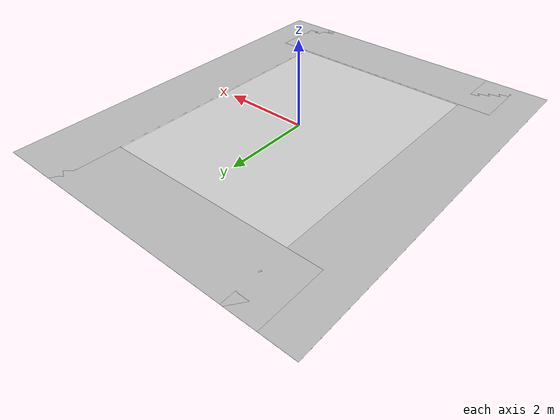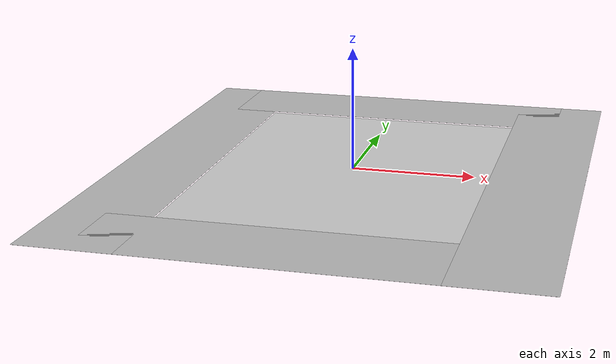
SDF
<?xml version="1.0" ?>
<sdf version="1.4">
  <model name="KRSBI_Regional_field">
    <static>true</static>

    <link name="chassis">
      <pose>0 0 0.01 0 0 0</pose>
      <collision name="collision">
        <geometry>
          <plane>
            <normal>0 0 1</normal>
            <size>4.5 6</size>
          </plane>
        </geometry>
        <surface>
          <friction>
            <ode>
              <mu>100</mu>
              <mu2>50</mu2>
            </ode>
          </friction>
        </surface>
      </collision>

      <visual name="carpet">
        <cast_shadows>false</cast_shadows>
        <geometry>
          <plane>
            <normal>0 0 1</normal>
            <size>4.5 6</size>
          </plane>
        </geometry>
        <material>
          <script>
            <uri>file://materials/scripts/</uri>
            <uri>file://materials/textures/</uri>
            <name>RoboCup/Carpet</name>
          </script>
        </material>
      </visual>

       <visual name="base1">
        <pose>0 3.75 0.01 0 0 0</pose>
        <cast_shadows>false</cast_shadows>
        <geometry>
          <plane>
            <normal>0 0 1</normal>
            <size>6.0 1.5</size>
          </plane>
        </geometry>
        <material>
          <script>
            <uri>file://materials/scripts/</uri>
            <uri>file://materials/textures/</uri>
            <name>RoboCup/FieldBorder</name>
          </script>
        </material>
      </visual>
      <visual name="base2">
        <pose>0 -3.75 0.01 0 0 0</pose>
        <cast_shadows>false</cast_shadows>
        <geometry>
          <plane>
            <normal>0 0 1</normal>
            <size>6.0 1.5</size>
          </plane>
        </geometry>
        <material>
          <script>
            <uri>file://materials/scripts/</uri>
            <uri>file://materials/textures/</uri>
            <name>RoboCup/FieldBorder</name>
          </script>
        </material>
      </visual>
      <visual name="base3">
        <pose>3.0 0 0.01 0 0 0</pose>
        <cast_shadows>false</cast_shadows>
        <geometry>
          <plane>
            <normal>0 0 1</normal>
            <size>1.5 9.0</size>
          </plane>
        </geometry>
        <material>
          <script>
            <uri>file://materials/scripts/</uri>
            <uri>file://materials/textures/</uri>
            <name>RoboCup/FieldBorder</name>
          </script>
        </material>
      </visual>
      <visual name="base4">
        <pose>-3.0 0 0.01 0 0 0</pose>
        <cast_shadows>false</cast_shadows>
        <geometry>
          <plane>
            <normal>0 0 1</normal>
            <size>1.5 9.0</size>
          </plane>
        </geometry>
        <material>
          <script>
            <uri>file://materials/scripts/</uri>
            <uri>file://materials/textures/</uri>
            <name>RoboCup/FieldBorder</name>
          </script>
        </material>
      </visual>
    </link>

  </model>
</sdf>
